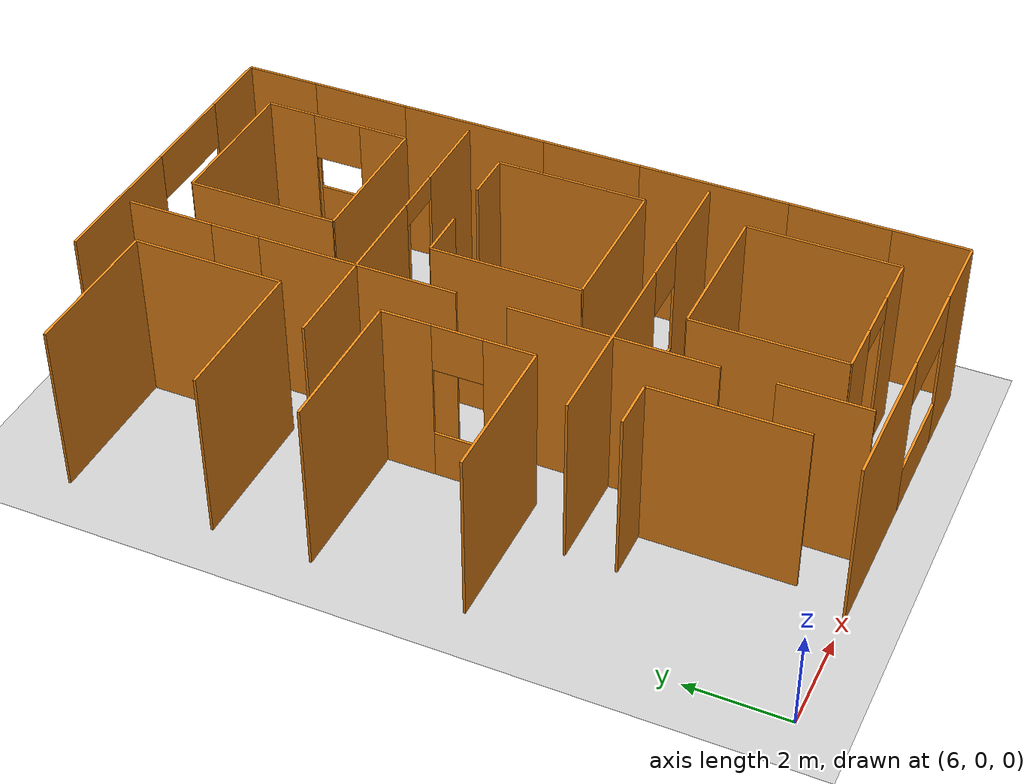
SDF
<sdf version="1.6">
 <world name="default">
  <include><uri>model://rirpc_box</uri><name>cube_4</name><pose>12.53125 2.46875 0 0 0 0</pose></include>
  <include><uri>model://rirpc_box</uri><name>cube_2</name><pose>10.03125 14.96875 0 0 0 0</pose></include>
  <model name="window_18">
   <pose>9.0 7.5 1.75 0 0 1.5707963267948966</pose>
   <link name="top">
    <pose>0 0 1.25 0 0 0</pose>
    <inertial>
     <mass>1</mass>
     <inertia><ixx>0</ixx><ixy>0</ixy><ixz>0</ixz><iyy>0</iyy><iyz>0</iyz><izz>0</izz></inertia>
    </inertial>
    <collision name="collision"><geometry><box><size>1.0 0.05 1.0</size></box></geometry></collision>
    <visual name="visual">
     <geometry><box><size>1.0 0.05 1.0</size></box></geometry>
     <material>
      <script><name>Gazebo/Orange</name><uri>file://media/materials/scripts/gazebo.material</uri></script>
     </material>
    </visual>
   </link>
   <link name="bot">
    <pose>0 0 -1.25 0 0 0</pose>
    <inertial>
     <mass>1</mass>
     <inertia><ixx>0</ixx><ixy>0</ixy><ixz>0</ixz><iyy>0</iyy><iyz>0</iyz><izz>0</izz></inertia>
    </inertial>
    <collision name="collision"><geometry><box><size>1.0 0.05 1.0</size></box></geometry></collision>
    <visual name="visual">
     <geometry><box><size>1.0 0.05 1.0</size></box></geometry>
     <material>
      <script><name>Gazebo/Orange</name><uri>file://media/materials/scripts/gazebo.material</uri></script>
     </material>
    </visual>
   </link>
   <static>1</static>
  </model>
  <model name="window_16">
   <pose>14.0 12.5 1.75 0 0 1.5707963267948966</pose>
   <link name="top">
    <pose>0 0 1.25 0 0 0</pose>
    <inertial>
     <mass>1</mass>
     <inertia><ixx>0</ixx><ixy>0</ixy><ixz>0</ixz><iyy>0</iyy><iyz>0</iyz><izz>0</izz></inertia>
    </inertial>
    <collision name="collision"><geometry><box><size>1.0 0.05 1.0</size></box></geometry></collision>
    <visual name="visual">
     <geometry><box><size>1.0 0.05 1.0</size></box></geometry>
     <material>
      <script><name>Gazebo/Orange</name><uri>file://media/materials/scripts/gazebo.material</uri></script>
     </material>
    </visual>
   </link>
   <link name="bot">
    <pose>0 0 -1.25 0 0 0</pose>
    <inertial>
     <mass>1</mass>
     <inertia><ixx>0</ixx><ixy>0</ixy><ixz>0</ixz><iyy>0</iyy><iyz>0</iyz><izz>0</izz></inertia>
    </inertial>
    <collision name="collision"><geometry><box><size>1.0 0.05 1.0</size></box></geometry></collision>
    <visual name="visual">
     <geometry><box><size>1.0 0.05 1.0</size></box></geometry>
     <material>
      <script><name>Gazebo/Orange</name><uri>file://media/materials/scripts/gazebo.material</uri></script>
     </material>
    </visual>
   </link>
   <static>1</static>
  </model>
  <model name="window_14">
   <pose>10.0 12.5 1.75 0 0 1.5707963267948966</pose>
   <link name="top">
    <pose>0 0 1.25 0 0 0</pose>
    <inertial>
     <mass>1</mass>
     <inertia><ixx>0</ixx><ixy>0</ixy><ixz>0</ixz><iyy>0</iyy><iyz>0</iyz><izz>0</izz></inertia>
    </inertial>
    <collision name="collision"><geometry><box><size>1.0 0.05 1.0</size></box></geometry></collision>
    <visual name="visual">
     <geometry><box><size>1.0 0.05 1.0</size></box></geometry>
     <material>
      <script><name>Gazebo/Orange</name><uri>file://media/materials/scripts/gazebo.material</uri></script>
     </material>
    </visual>
   </link>
   <link name="bot">
    <pose>0 0 -1.25 0 0 0</pose>
    <inertial>
     <mass>1</mass>
     <inertia><ixx>0</ixx><ixy>0</ixy><ixz>0</ixz><iyy>0</iyy><iyz>0</iyz><izz>0</izz></inertia>
    </inertial>
    <collision name="collision"><geometry><box><size>1.0 0.05 1.0</size></box></geometry></collision>
    <visual name="visual">
     <geometry><box><size>1.0 0.05 1.0</size></box></geometry>
     <material>
      <script><name>Gazebo/Orange</name><uri>file://media/materials/scripts/gazebo.material</uri></script>
     </material>
    </visual>
   </link>
   <static>1</static>
  </model>
  <model name="window_12">
   <pose>12.5 5.0 1.75 0 0 -3.141592653589793</pose>
   <link name="top">
    <pose>0 0 1.25 0 0 0</pose>
    <inertial>
     <mass>1</mass>
     <inertia><ixx>0</ixx><ixy>0</ixy><ixz>0</ixz><iyy>0</iyy><iyz>0</iyz><izz>0</izz></inertia>
    </inertial>
    <collision name="collision"><geometry><box><size>1.0 0.05 1.0</size></box></geometry></collision>
    <visual name="visual">
     <geometry><box><size>1.0 0.05 1.0</size></box></geometry>
     <material>
      <script><name>Gazebo/Orange</name><uri>file://media/materials/scripts/gazebo.material</uri></script>
     </material>
    </visual>
   </link>
   <link name="bot">
    <pose>0 0 -1.25 0 0 0</pose>
    <inertial>
     <mass>1</mass>
     <inertia><ixx>0</ixx><ixy>0</ixy><ixz>0</ixz><iyy>0</iyy><iyz>0</iyz><izz>0</izz></inertia>
    </inertial>
    <collision name="collision"><geometry><box><size>1.0 0.05 1.0</size></box></geometry></collision>
    <visual name="visual">
     <geometry><box><size>1.0 0.05 1.0</size></box></geometry>
     <material>
      <script><name>Gazebo/Orange</name><uri>file://media/materials/scripts/gazebo.material</uri></script>
     </material>
    </visual>
   </link>
   <static>1</static>
  </model>
  <model name="window_8">
   <pose>12.5 0.0 1.75 0 0 -0.0</pose>
   <link name="top">
    <pose>0 0 1.25 0 0 0</pose>
    <inertial>
     <mass>1</mass>
     <inertia><ixx>0</ixx><ixy>0</ixy><ixz>0</ixz><iyy>0</iyy><iyz>0</iyz><izz>0</izz></inertia>
    </inertial>
    <collision name="collision"><geometry><box><size>2.0 0.05 1.0</size></box></geometry></collision>
    <visual name="visual">
     <geometry><box><size>2.0 0.05 1.0</size></box></geometry>
     <material>
      <script><name>Gazebo/Orange</name><uri>file://media/materials/scripts/gazebo.material</uri></script>
     </material>
    </visual>
   </link>
   <link name="bot">
    <pose>0 0 -1.25 0 0 0</pose>
    <inertial>
     <mass>1</mass>
     <inertia><ixx>0</ixx><ixy>0</ixy><ixz>0</ixz><iyy>0</iyy><iyz>0</iyz><izz>0</izz></inertia>
    </inertial>
    <collision name="collision"><geometry><box><size>2.0 0.05 1.0</size></box></geometry></collision>
    <visual name="visual">
     <geometry><box><size>2.0 0.05 1.0</size></box></geometry>
     <material>
      <script><name>Gazebo/Orange</name><uri>file://media/materials/scripts/gazebo.material</uri></script>
     </material>
    </visual>
   </link>
   <static>1</static>
  </model>
  <model name="window_7">
   <pose>15.0 2.5 1.75 0 0 1.5707963267948966</pose>
   <link name="top">
    <pose>0 0 1.25 0 0 0</pose>
    <inertial>
     <mass>1</mass>
     <inertia><ixx>0</ixx><ixy>0</ixy><ixz>0</ixz><iyy>0</iyy><iyz>0</iyz><izz>0</izz></inertia>
    </inertial>
    <collision name="collision"><geometry><box><size>2.0 0.05 1.0</size></box></geometry></collision>
    <visual name="visual">
     <geometry><box><size>2.0 0.05 1.0</size></box></geometry>
     <material>
      <script><name>Gazebo/Orange</name><uri>file://media/materials/scripts/gazebo.material</uri></script>
     </material>
    </visual>
   </link>
   <link name="bot">
    <pose>0 0 -1.25 0 0 0</pose>
    <inertial>
     <mass>1</mass>
     <inertia><ixx>0</ixx><ixy>0</ixy><ixz>0</ixz><iyy>0</iyy><iyz>0</iyz><izz>0</izz></inertia>
    </inertial>
    <collision name="collision"><geometry><box><size>2.0 0.05 1.0</size></box></geometry></collision>
    <visual name="visual">
     <geometry><box><size>2.0 0.05 1.0</size></box></geometry>
     <material>
      <script><name>Gazebo/Orange</name><uri>file://media/materials/scripts/gazebo.material</uri></script>
     </material>
    </visual>
   </link>
   <static>1</static>
  </model>
  <model name="window_6">
   <pose>15.0 7.5 1.75 0 0 1.5707963267948966</pose>
   <link name="top">
    <pose>0 0 1.25 0 0 0</pose>
    <inertial>
     <mass>1</mass>
     <inertia><ixx>0</ixx><ixy>0</ixy><ixz>0</ixz><iyy>0</iyy><iyz>0</iyz><izz>0</izz></inertia>
    </inertial>
    <collision name="collision"><geometry><box><size>2.0 0.05 1.0</size></box></geometry></collision>
    <visual name="visual">
     <geometry><box><size>2.0 0.05 1.0</size></box></geometry>
     <material>
      <script><name>Gazebo/Orange</name><uri>file://media/materials/scripts/gazebo.material</uri></script>
     </material>
    </visual>
   </link>
   <link name="bot">
    <pose>0 0 -1.25 0 0 0</pose>
    <inertial>
     <mass>1</mass>
     <inertia><ixx>0</ixx><ixy>0</ixy><ixz>0</ixz><iyy>0</iyy><iyz>0</iyz><izz>0</izz></inertia>
    </inertial>
    <collision name="collision"><geometry><box><size>2.0 0.05 1.0</size></box></geometry></collision>
    <visual name="visual">
     <geometry><box><size>2.0 0.05 1.0</size></box></geometry>
     <material>
      <script><name>Gazebo/Orange</name><uri>file://media/materials/scripts/gazebo.material</uri></script>
     </material>
    </visual>
   </link>
   <static>1</static>
  </model>
  <model name="window_5">
   <pose>15.0 12.5 1.75 0 0 1.5707963267948966</pose>
   <link name="top">
    <pose>0 0 1.25 0 0 0</pose>
    <inertial>
     <mass>1</mass>
     <inertia><ixx>0</ixx><ixy>0</ixy><ixz>0</ixz><iyy>0</iyy><iyz>0</iyz><izz>0</izz></inertia>
    </inertial>
    <collision name="collision"><geometry><box><size>2.0 0.05 1.0</size></box></geometry></collision>
    <visual name="visual">
     <geometry><box><size>2.0 0.05 1.0</size></box></geometry>
     <material>
      <script><name>Gazebo/Orange</name><uri>file://media/materials/scripts/gazebo.material</uri></script>
     </material>
    </visual>
   </link>
   <link name="bot">
    <pose>0 0 -1.25 0 0 0</pose>
    <inertial>
     <mass>1</mass>
     <inertia><ixx>0</ixx><ixy>0</ixy><ixz>0</ixz><iyy>0</iyy><iyz>0</iyz><izz>0</izz></inertia>
    </inertial>
    <collision name="collision"><geometry><box><size>2.0 0.05 1.0</size></box></geometry></collision>
    <visual name="visual">
     <geometry><box><size>2.0 0.05 1.0</size></box></geometry>
     <material>
      <script><name>Gazebo/Orange</name><uri>file://media/materials/scripts/gazebo.material</uri></script>
     </material>
    </visual>
   </link>
   <static>1</static>
  </model>
  <model name="window_4">
   <pose>12.5 15.0 1.75 0 0 -3.141592653589793</pose>
   <link name="top">
    <pose>0 0 1.25 0 0 0</pose>
    <inertial>
     <mass>1</mass>
     <inertia><ixx>0</ixx><ixy>0</ixy><ixz>0</ixz><iyy>0</iyy><iyz>0</iyz><izz>0</izz></inertia>
    </inertial>
    <collision name="collision"><geometry><box><size>2.0 0.05 1.0</size></box></geometry></collision>
    <visual name="visual">
     <geometry><box><size>2.0 0.05 1.0</size></box></geometry>
     <material>
      <script><name>Gazebo/Orange</name><uri>file://media/materials/scripts/gazebo.material</uri></script>
     </material>
    </visual>
   </link>
   <link name="bot">
    <pose>0 0 -1.25 0 0 0</pose>
    <inertial>
     <mass>1</mass>
     <inertia><ixx>0</ixx><ixy>0</ixy><ixz>0</ixz><iyy>0</iyy><iyz>0</iyz><izz>0</izz></inertia>
    </inertial>
    <collision name="collision"><geometry><box><size>2.0 0.05 1.0</size></box></geometry></collision>
    <visual name="visual">
     <geometry><box><size>2.0 0.05 1.0</size></box></geometry>
     <material>
      <script><name>Gazebo/Orange</name><uri>file://media/materials/scripts/gazebo.material</uri></script>
     </material>
    </visual>
   </link>
   <static>1</static>
  </model>
  <model name="box_84">
   <pose>12.5 1.0 3.25 0 0 -3.141592653589793</pose>
   <link name="link">
    <inertial>
     <mass>1</mass>
     <inertia><ixx>0</ixx><ixy>0</ixy><ixz>0</ixz><iyy>0</iyy><iyz>0</iyz><izz>0</izz></inertia>
    </inertial>
    <collision name="collision"><geometry><box><size>1.0 0.05 0.5</size></box></geometry></collision>
    <visual name="visual">
     <geometry><box><size>1.0 0.05 0.5</size></box></geometry>
     <material>
      <script><name>Gazebo/Orange</name><uri>file://media/materials/scripts/gazebo.material</uri></script>
     </material>
    </visual>
   </link>
   <static>1</static>
  </model>
  <model name="box_81">
   <pose>12.5 10.0 3.25 0 0 -3.141592653589793</pose>
   <link name="link">
    <inertial>
     <mass>1</mass>
     <inertia><ixx>0</ixx><ixy>0</ixy><ixz>0</ixz><iyy>0</iyy><iyz>0</iyz><izz>0</izz></inertia>
    </inertial>
    <collision name="collision"><geometry><box><size>1.0 0.05 0.5</size></box></geometry></collision>
    <visual name="visual">
     <geometry><box><size>1.0 0.05 0.5</size></box></geometry>
     <material>
      <script><name>Gazebo/Orange</name><uri>file://media/materials/scripts/gazebo.material</uri></script>
     </material>
    </visual>
   </link>
   <static>1</static>
  </model>
  <model name="box_70">
   <pose>13.5 1.0 1.75 0 0 -0.0</pose>
   <link name="link">
    <inertial>
     <mass>1</mass>
     <inertia><ixx>0</ixx><ixy>0</ixy><ixz>0</ixz><iyy>0</iyy><iyz>0</iyz><izz>0</izz></inertia>
    </inertial>
    <collision name="collision"><geometry><box><size>1.0 0.05 3.5</size></box></geometry></collision>
    <visual name="visual">
     <geometry><box><size>1.0 0.05 3.5</size></box></geometry>
     <material>
      <script><name>Gazebo/Orange</name><uri>file://media/materials/scripts/gazebo.material</uri></script>
     </material>
    </visual>
   </link>
   <static>1</static>
  </model>
  <model name="box_69">
   <pose>14.0 2.5 1.75 0 0 1.5707963267948966</pose>
   <link name="link">
    <inertial>
     <mass>1</mass>
     <inertia><ixx>0</ixx><ixy>0</ixy><ixz>0</ixz><iyy>0</iyy><iyz>0</iyz><izz>0</izz></inertia>
    </inertial>
    <collision name="collision"><geometry><box><size>3.0 0.05 3.5</size></box></geometry></collision>
    <visual name="visual">
     <geometry><box><size>3.0 0.05 3.5</size></box></geometry>
     <material>
      <script><name>Gazebo/Orange</name><uri>file://media/materials/scripts/gazebo.material</uri></script>
     </material>
    </visual>
   </link>
   <static>1</static>
  </model>
  <model name="box_68">
   <pose>12.5 4.0 1.75 0 0 -3.141592653589793</pose>
   <link name="link">
    <inertial>
     <mass>1</mass>
     <inertia><ixx>0</ixx><ixy>0</ixy><ixz>0</ixz><iyy>0</iyy><iyz>0</iyz><izz>0</izz></inertia>
    </inertial>
    <collision name="collision"><geometry><box><size>3.0 0.05 3.5</size></box></geometry></collision>
    <visual name="visual">
     <geometry><box><size>3.0 0.05 3.5</size></box></geometry>
     <material>
      <script><name>Gazebo/Orange</name><uri>file://media/materials/scripts/gazebo.material</uri></script>
     </material>
    </visual>
   </link>
   <static>1</static>
  </model>
  <model name="box_67">
   <pose>11.0 2.5 1.75 0 0 -1.5707963267948966</pose>
   <link name="link">
    <inertial>
     <mass>1</mass>
     <inertia><ixx>0</ixx><ixy>0</ixy><ixz>0</ixz><iyy>0</iyy><iyz>0</iyz><izz>0</izz></inertia>
    </inertial>
    <collision name="collision"><geometry><box><size>3.0 0.05 3.5</size></box></geometry></collision>
    <visual name="visual">
     <geometry><box><size>3.0 0.05 3.5</size></box></geometry>
     <material>
      <script><name>Gazebo/Orange</name><uri>file://media/materials/scripts/gazebo.material</uri></script>
     </material>
    </visual>
   </link>
   <static>1</static>
  </model>
  <model name="box_66">
   <pose>11.5 1.0 1.75 0 0 -0.0</pose>
   <link name="link">
    <inertial>
     <mass>1</mass>
     <inertia><ixx>0</ixx><ixy>0</ixy><ixz>0</ixz><iyy>0</iyy><iyz>0</iyz><izz>0</izz></inertia>
    </inertial>
    <collision name="collision"><geometry><box><size>1.0 0.05 3.5</size></box></geometry></collision>
    <visual name="visual">
     <geometry><box><size>1.0 0.05 3.5</size></box></geometry>
     <material>
      <script><name>Gazebo/Orange</name><uri>file://media/materials/scripts/gazebo.material</uri></script>
     </material>
    </visual>
   </link>
   <static>1</static>
  </model>
  <model name="box_65">
   <pose>8.5 4.0 1.75 0 0 -0.0</pose>
   <link name="link">
    <inertial>
     <mass>1</mass>
     <inertia><ixx>0</ixx><ixy>0</ixy><ixz>0</ixz><iyy>0</iyy><iyz>0</iyz><izz>0</izz></inertia>
    </inertial>
    <collision name="collision"><geometry><box><size>1.0 0.05 3.5</size></box></geometry></collision>
    <visual name="visual">
     <geometry><box><size>1.0 0.05 3.5</size></box></geometry>
     <material>
      <script><name>Gazebo/Orange</name><uri>file://media/materials/scripts/gazebo.material</uri></script>
     </material>
    </visual>
   </link>
   <static>1</static>
  </model>
  <model name="box_64">
   <pose>9.0 2.5 1.75 0 0 -1.5707963267948966</pose>
   <link name="link">
    <inertial>
     <mass>1</mass>
     <inertia><ixx>0</ixx><ixy>0</ixy><ixz>0</ixz><iyy>0</iyy><iyz>0</iyz><izz>0</izz></inertia>
    </inertial>
    <collision name="collision"><geometry><box><size>3.0 0.05 3.5</size></box></geometry></collision>
    <visual name="visual">
     <geometry><box><size>3.0 0.05 3.5</size></box></geometry>
     <material>
      <script><name>Gazebo/Orange</name><uri>file://media/materials/scripts/gazebo.material</uri></script>
     </material>
    </visual>
   </link>
   <static>1</static>
  </model>
  <model name="box_60">
   <pose>14.0 13.5 1.75 0 0 1.5707963267948966</pose>
   <link name="link">
    <inertial>
     <mass>1</mass>
     <inertia><ixx>0</ixx><ixy>0</ixy><ixz>0</ixz><iyy>0</iyy><iyz>0</iyz><izz>0</izz></inertia>
    </inertial>
    <collision name="collision"><geometry><box><size>1.0 0.05 3.5</size></box></geometry></collision>
    <visual name="visual">
     <geometry><box><size>1.0 0.05 3.5</size></box></geometry>
     <material>
      <script><name>Gazebo/Orange</name><uri>file://media/materials/scripts/gazebo.material</uri></script>
     </material>
    </visual>
   </link>
   <static>1</static>
  </model>
  <model name="box_59">
   <pose>12.5 14.0 1.75 0 0 -3.141592653589793</pose>
   <link name="link">
    <inertial>
     <mass>1</mass>
     <inertia><ixx>0</ixx><ixy>0</ixy><ixz>0</ixz><iyy>0</iyy><iyz>0</iyz><izz>0</izz></inertia>
    </inertial>
    <collision name="collision"><geometry><box><size>3.0 0.05 3.5</size></box></geometry></collision>
    <visual name="visual">
     <geometry><box><size>3.0 0.05 3.5</size></box></geometry>
     <material>
      <script><name>Gazebo/Orange</name><uri>file://media/materials/scripts/gazebo.material</uri></script>
     </material>
    </visual>
   </link>
   <static>1</static>
  </model>
  <model name="box_58">
   <pose>11.0 12.5 1.75 0 0 -1.5707963267948966</pose>
   <link name="link">
    <inertial>
     <mass>1</mass>
     <inertia><ixx>0</ixx><ixy>0</ixy><ixz>0</ixz><iyy>0</iyy><iyz>0</iyz><izz>0</izz></inertia>
    </inertial>
    <collision name="collision"><geometry><box><size>3.0 0.05 3.5</size></box></geometry></collision>
    <visual name="visual">
     <geometry><box><size>3.0 0.05 3.5</size></box></geometry>
     <material>
      <script><name>Gazebo/Orange</name><uri>file://media/materials/scripts/gazebo.material</uri></script>
     </material>
    </visual>
   </link>
   <static>1</static>
  </model>
  <model name="box_57">
   <pose>12.5 11.0 1.75 0 0 -0.0</pose>
   <link name="link">
    <inertial>
     <mass>1</mass>
     <inertia><ixx>0</ixx><ixy>0</ixy><ixz>0</ixz><iyy>0</iyy><iyz>0</iyz><izz>0</izz></inertia>
    </inertial>
    <collision name="collision"><geometry><box><size>3.0 0.05 3.5</size></box></geometry></collision>
    <visual name="visual">
     <geometry><box><size>3.0 0.05 3.5</size></box></geometry>
     <material>
      <script><name>Gazebo/Orange</name><uri>file://media/materials/scripts/gazebo.material</uri></script>
     </material>
    </visual>
   </link>
   <static>1</static>
  </model>
  <model name="box_56">
   <pose>14.0 11.5 1.75 0 0 1.5707963267948966</pose>
   <link name="link">
    <inertial>
     <mass>1</mass>
     <inertia><ixx>0</ixx><ixy>0</ixy><ixz>0</ixz><iyy>0</iyy><iyz>0</iyz><izz>0</izz></inertia>
    </inertial>
    <collision name="collision"><geometry><box><size>1.0 0.05 3.5</size></box></geometry></collision>
    <visual name="visual">
     <geometry><box><size>1.0 0.05 3.5</size></box></geometry>
     <material>
      <script><name>Gazebo/Orange</name><uri>file://media/materials/scripts/gazebo.material</uri></script>
     </material>
    </visual>
   </link>
   <static>1</static>
  </model>
  <model name="box_54">
   <pose>7.5 11.0 1.75 0 0 -0.0</pose>
   <link name="link">
    <inertial>
     <mass>1</mass>
     <inertia><ixx>0</ixx><ixy>0</ixy><ixz>0</ixz><iyy>0</iyy><iyz>0</iyz><izz>0</izz></inertia>
    </inertial>
    <collision name="collision"><geometry><box><size>3.0 0.05 3.5</size></box></geometry></collision>
    <visual name="visual">
     <geometry><box><size>3.0 0.05 3.5</size></box></geometry>
     <material>
      <script><name>Gazebo/Orange</name><uri>file://media/materials/scripts/gazebo.material</uri></script>
     </material>
    </visual>
   </link>
   <static>1</static>
  </model>
  <model name="box_53">
   <pose>9.0 12.5 1.75 0 0 1.5707963267948966</pose>
   <link name="link">
    <inertial>
     <mass>1</mass>
     <inertia><ixx>0</ixx><ixy>0</ixy><ixz>0</ixz><iyy>0</iyy><iyz>0</iyz><izz>0</izz></inertia>
    </inertial>
    <collision name="collision"><geometry><box><size>3.0 0.05 3.5</size></box></geometry></collision>
    <visual name="visual">
     <geometry><box><size>3.0 0.05 3.5</size></box></geometry>
     <material>
      <script><name>Gazebo/Orange</name><uri>file://media/materials/scripts/gazebo.material</uri></script>
     </material>
    </visual>
   </link>
   <static>1</static>
  </model>
  <model name="box_52">
   <pose>7.5 14.0 1.75 0 0 -3.141592653589793</pose>
   <link name="link">
    <inertial>
     <mass>1</mass>
     <inertia><ixx>0</ixx><ixy>0</ixy><ixz>0</ixz><iyy>0</iyy><iyz>0</iyz><izz>0</izz></inertia>
    </inertial>
    <collision name="collision"><geometry><box><size>3.0 0.05 3.5</size></box></geometry></collision>
    <visual name="visual">
     <geometry><box><size>3.0 0.05 3.5</size></box></geometry>
     <material>
      <script><name>Gazebo/Orange</name><uri>file://media/materials/scripts/gazebo.material</uri></script>
     </material>
    </visual>
   </link>
   <static>1</static>
  </model>
  <model name="box_50">
   <pose>11.5 9.0 1.75 0 0 -0.0</pose>
   <link name="link">
    <inertial>
     <mass>1</mass>
     <inertia><ixx>0</ixx><ixy>0</ixy><ixz>0</ixz><iyy>0</iyy><iyz>0</iyz><izz>0</izz></inertia>
    </inertial>
    <collision name="collision"><geometry><box><size>1.0 0.05 3.5</size></box></geometry></collision>
    <visual name="visual">
     <geometry><box><size>1.0 0.05 3.5</size></box></geometry>
     <material>
      <script><name>Gazebo/Orange</name><uri>file://media/materials/scripts/gazebo.material</uri></script>
     </material>
    </visual>
   </link>
   <static>1</static>
  </model>
  <model name="box_49">
   <pose>13.5 9.0 1.75 0 0 -0.0</pose>
   <link name="link">
    <inertial>
     <mass>1</mass>
     <inertia><ixx>0</ixx><ixy>0</ixy><ixz>0</ixz><iyy>0</iyy><iyz>0</iyz><izz>0</izz></inertia>
    </inertial>
    <collision name="collision"><geometry><box><size>1.0 0.05 3.5</size></box></geometry></collision>
    <visual name="visual">
     <geometry><box><size>1.0 0.05 3.5</size></box></geometry>
     <material>
      <script><name>Gazebo/Orange</name><uri>file://media/materials/scripts/gazebo.material</uri></script>
     </material>
    </visual>
   </link>
   <static>1</static>
  </model>
  <model name="box_48">
   <pose>14.0 7.5 1.75 0 0 -1.5707963267948966</pose>
   <link name="link">
    <inertial>
     <mass>1</mass>
     <inertia><ixx>0</ixx><ixy>0</ixy><ixz>0</ixz><iyy>0</iyy><iyz>0</iyz><izz>0</izz></inertia>
    </inertial>
    <collision name="collision"><geometry><box><size>3.0 0.05 3.5</size></box></geometry></collision>
    <visual name="visual">
     <geometry><box><size>3.0 0.05 3.5</size></box></geometry>
     <material>
      <script><name>Gazebo/Orange</name><uri>file://media/materials/scripts/gazebo.material</uri></script>
     </material>
    </visual>
   </link>
   <static>1</static>
  </model>
  <model name="box_47">
   <pose>12.5 6.0 1.75 0 0 -3.141592653589793</pose>
   <link name="link">
    <inertial>
     <mass>1</mass>
     <inertia><ixx>0</ixx><ixy>0</ixy><ixz>0</ixz><iyy>0</iyy><iyz>0</iyz><izz>0</izz></inertia>
    </inertial>
    <collision name="collision"><geometry><box><size>3.0 0.05 3.5</size></box></geometry></collision>
    <visual name="visual">
     <geometry><box><size>3.0 0.05 3.5</size></box></geometry>
     <material>
      <script><name>Gazebo/Orange</name><uri>file://media/materials/scripts/gazebo.material</uri></script>
     </material>
    </visual>
   </link>
   <static>1</static>
  </model>
  <model name="box_46">
   <pose>11.0 7.5 1.75 0 0 1.5707963267948966</pose>
   <link name="link">
    <inertial>
     <mass>1</mass>
     <inertia><ixx>0</ixx><ixy>0</ixy><ixz>0</ixz><iyy>0</iyy><iyz>0</iyz><izz>0</izz></inertia>
    </inertial>
    <collision name="collision"><geometry><box><size>3.0 0.05 3.5</size></box></geometry></collision>
    <visual name="visual">
     <geometry><box><size>3.0 0.05 3.5</size></box></geometry>
     <material>
      <script><name>Gazebo/Orange</name><uri>file://media/materials/scripts/gazebo.material</uri></script>
     </material>
    </visual>
   </link>
   <static>1</static>
  </model>
  <model name="box_45">
   <pose>7.5 9.0 1.75 0 0 -0.0</pose>
   <link name="link">
    <inertial>
     <mass>1</mass>
     <inertia><ixx>0</ixx><ixy>0</ixy><ixz>0</ixz><iyy>0</iyy><iyz>0</iyz><izz>0</izz></inertia>
    </inertial>
    <collision name="collision"><geometry><box><size>3.0 0.05 3.5</size></box></geometry></collision>
    <visual name="visual">
     <geometry><box><size>3.0 0.05 3.5</size></box></geometry>
     <material>
      <script><name>Gazebo/Orange</name><uri>file://media/materials/scripts/gazebo.material</uri></script>
     </material>
    </visual>
   </link>
   <static>1</static>
  </model>
  <model name="box_44">
   <pose>9.0 8.5 1.75 0 0 -1.5707963267948966</pose>
   <link name="link">
    <inertial>
     <mass>1</mass>
     <inertia><ixx>0</ixx><ixy>0</ixy><ixz>0</ixz><iyy>0</iyy><iyz>0</iyz><izz>0</izz></inertia>
    </inertial>
    <collision name="collision"><geometry><box><size>1.0 0.05 3.5</size></box></geometry></collision>
    <visual name="visual">
     <geometry><box><size>1.0 0.05 3.5</size></box></geometry>
     <material>
      <script><name>Gazebo/Orange</name><uri>file://media/materials/scripts/gazebo.material</uri></script>
     </material>
    </visual>
   </link>
   <static>1</static>
  </model>
  <model name="box_43">
   <pose>9.0 6.5 1.75 0 0 -1.5707963267948966</pose>
   <link name="link">
    <inertial>
     <mass>1</mass>
     <inertia><ixx>0</ixx><ixy>0</ixy><ixz>0</ixz><iyy>0</iyy><iyz>0</iyz><izz>0</izz></inertia>
    </inertial>
    <collision name="collision"><geometry><box><size>1.0 0.05 3.5</size></box></geometry></collision>
    <visual name="visual">
     <geometry><box><size>1.0 0.05 3.5</size></box></geometry>
     <material>
      <script><name>Gazebo/Orange</name><uri>file://media/materials/scripts/gazebo.material</uri></script>
     </material>
    </visual>
   </link>
   <static>1</static>
  </model>
  <model name="box_42">
   <pose>7.5 6.0 1.75 0 0 -3.141592653589793</pose>
   <link name="link">
    <inertial>
     <mass>1</mass>
     <inertia><ixx>0</ixx><ixy>0</ixy><ixz>0</ixz><iyy>0</iyy><iyz>0</iyz><izz>0</izz></inertia>
    </inertial>
    <collision name="collision"><geometry><box><size>3.0 0.05 3.5</size></box></geometry></collision>
    <visual name="visual">
     <geometry><box><size>3.0 0.05 3.5</size></box></geometry>
     <material>
      <script><name>Gazebo/Orange</name><uri>file://media/materials/scripts/gazebo.material</uri></script>
     </material>
    </visual>
   </link>
   <static>1</static>
  </model>
  <model name="box_32">
   <pose>13.875 10.0 1.75 0 0 -3.141592653589793</pose>
   <link name="link">
    <inertial>
     <mass>1</mass>
     <inertia><ixx>0</ixx><ixy>0</ixy><ixz>0</ixz><iyy>0</iyy><iyz>0</iyz><izz>0</izz></inertia>
    </inertial>
    <collision name="collision"><geometry><box><size>1.75 0.05 3.5</size></box></geometry></collision>
    <visual name="visual">
     <geometry><box><size>1.75 0.05 3.5</size></box></geometry>
     <material>
      <script><name>Gazebo/Orange</name><uri>file://media/materials/scripts/gazebo.material</uri></script>
     </material>
    </visual>
   </link>
   <static>1</static>
  </model>
  <model name="box_30">
   <pose>10.0 10.0 1.75 0 0 -3.141592653589793</pose>
   <link name="link">
    <inertial>
     <mass>1</mass>
     <inertia><ixx>0</ixx><ixy>0</ixy><ixz>0</ixz><iyy>0</iyy><iyz>0</iyz><izz>0</izz></inertia>
    </inertial>
    <collision name="collision"><geometry><box><size>4.0 0.05 3.5</size></box></geometry></collision>
    <visual name="visual">
     <geometry><box><size>4.0 0.05 3.5</size></box></geometry>
     <material>
      <script><name>Gazebo/Orange</name><uri>file://media/materials/scripts/gazebo.material</uri></script>
     </material>
    </visual>
   </link>
   <static>1</static>
  </model>
  <model name="box_26">
   <pose>10.0 13.875 1.75 0 0 -1.5707963267948966</pose>
   <link name="link">
    <inertial>
     <mass>1</mass>
     <inertia><ixx>0</ixx><ixy>0</ixy><ixz>0</ixz><iyy>0</iyy><iyz>0</iyz><izz>0</izz></inertia>
    </inertial>
    <collision name="collision"><geometry><box><size>1.75 0.05 3.5</size></box></geometry></collision>
    <visual name="visual">
     <geometry><box><size>1.75 0.05 3.5</size></box></geometry>
     <material>
      <script><name>Gazebo/Orange</name><uri>file://media/materials/scripts/gazebo.material</uri></script>
     </material>
    </visual>
   </link>
   <static>1</static>
  </model>
  <model name="box_25">
   <pose>13.875 5.0 1.75 0 0 -3.141592653589793</pose>
   <link name="link">
    <inertial>
     <mass>1</mass>
     <inertia><ixx>0</ixx><ixy>0</ixy><ixz>0</ixz><iyy>0</iyy><iyz>0</iyz><izz>0</izz></inertia>
    </inertial>
    <collision name="collision"><geometry><box><size>1.75 0.05 3.5</size></box></geometry></collision>
    <visual name="visual">
     <geometry><box><size>1.75 0.05 3.5</size></box></geometry>
     <material>
      <script><name>Gazebo/Orange</name><uri>file://media/materials/scripts/gazebo.material</uri></script>
     </material>
    </visual>
   </link>
   <static>1</static>
  </model>
  <model name="box_24">
   <pose>10.0 1.125 1.75 0 0 1.5707963267948966</pose>
   <link name="link">
    <inertial>
     <mass>1</mass>
     <inertia><ixx>0</ixx><ixy>0</ixy><ixz>0</ixz><iyy>0</iyy><iyz>0</iyz><izz>0</izz></inertia>
    </inertial>
    <collision name="collision"><geometry><box><size>1.75 0.05 3.5</size></box></geometry></collision>
    <visual name="visual">
     <geometry><box><size>1.75 0.05 3.5</size></box></geometry>
     <material>
      <script><name>Gazebo/Orange</name><uri>file://media/materials/scripts/gazebo.material</uri></script>
     </material>
    </visual>
   </link>
   <static>1</static>
  </model>
  <model name="box_22">
   <pose>10.0 5.0 1.75 0 0 1.5707963267948966</pose>
   <link name="link">
    <inertial>
     <mass>1</mass>
     <inertia><ixx>0</ixx><ixy>0</ixy><ixz>0</ixz><iyy>0</iyy><iyz>0</iyz><izz>0</izz></inertia>
    </inertial>
    <collision name="collision"><geometry><box><size>4.0 0.05 3.5</size></box></geometry></collision>
    <visual name="visual">
     <geometry><box><size>4.0 0.05 3.5</size></box></geometry>
     <material>
      <script><name>Gazebo/Orange</name><uri>file://media/materials/scripts/gazebo.material</uri></script>
     </material>
    </visual>
   </link>
   <static>1</static>
  </model>
  <model name="box_21">
   <pose>10.0 10.0 1.75 0 0 1.5707963267948966</pose>
   <link name="link">
    <inertial>
     <mass>1</mass>
     <inertia><ixx>0</ixx><ixy>0</ixy><ixz>0</ixz><iyy>0</iyy><iyz>0</iyz><izz>0</izz></inertia>
    </inertial>
    <collision name="collision"><geometry><box><size>4.0 0.05 3.5</size></box></geometry></collision>
    <visual name="visual">
     <geometry><box><size>4.0 0.05 3.5</size></box></geometry>
     <material>
      <script><name>Gazebo/Orange</name><uri>file://media/materials/scripts/gazebo.material</uri></script>
     </material>
    </visual>
   </link>
   <static>1</static>
  </model>
  <model name="box_18">
   <pose>10.0 5.0 1.75 0 0 -3.141592653589793</pose>
   <link name="link">
    <inertial>
     <mass>1</mass>
     <inertia><ixx>0</ixx><ixy>0</ixy><ixz>0</ixz><iyy>0</iyy><iyz>0</iyz><izz>0</izz></inertia>
    </inertial>
    <collision name="collision"><geometry><box><size>4.0 0.05 3.5</size></box></geometry></collision>
    <visual name="visual">
     <geometry><box><size>4.0 0.05 3.5</size></box></geometry>
     <material>
      <script><name>Gazebo/Orange</name><uri>file://media/materials/scripts/gazebo.material</uri></script>
     </material>
    </visual>
   </link>
   <static>1</static>
  </model>
  <model name="box_13">
   <pose>10.0 0.0 1.75 0 0 -0.0</pose>
   <link name="link">
    <inertial>
     <mass>1</mass>
     <inertia><ixx>0</ixx><ixy>0</ixy><ixz>0</ixz><iyy>0</iyy><iyz>0</iyz><izz>0</izz></inertia>
    </inertial>
    <collision name="collision"><geometry><box><size>3.0 0.05 3.5</size></box></geometry></collision>
    <visual name="visual">
     <geometry><box><size>3.0 0.05 3.5</size></box></geometry>
     <material>
      <script><name>Gazebo/Orange</name><uri>file://media/materials/scripts/gazebo.material</uri></script>
     </material>
    </visual>
   </link>
   <static>1</static>
  </model>
  <model name="box_12">
   <pose>14.25 0.0 1.75 0 0 -0.0</pose>
   <link name="link">
    <inertial>
     <mass>1</mass>
     <inertia><ixx>0</ixx><ixy>0</ixy><ixz>0</ixz><iyy>0</iyy><iyz>0</iyz><izz>0</izz></inertia>
    </inertial>
    <collision name="collision"><geometry><box><size>1.5 0.05 3.5</size></box></geometry></collision>
    <visual name="visual">
     <geometry><box><size>1.5 0.05 3.5</size></box></geometry>
     <material>
      <script><name>Gazebo/Orange</name><uri>file://media/materials/scripts/gazebo.material</uri></script>
     </material>
    </visual>
   </link>
   <static>1</static>
  </model>
  <model name="box_11">
   <pose>15.0 0.75 1.75 0 0 1.5707963267948966</pose>
   <link name="link">
    <inertial>
     <mass>1</mass>
     <inertia><ixx>0</ixx><ixy>0</ixy><ixz>0</ixz><iyy>0</iyy><iyz>0</iyz><izz>0</izz></inertia>
    </inertial>
    <collision name="collision"><geometry><box><size>1.5 0.05 3.5</size></box></geometry></collision>
    <visual name="visual">
     <geometry><box><size>1.5 0.05 3.5</size></box></geometry>
     <material>
      <script><name>Gazebo/Orange</name><uri>file://media/materials/scripts/gazebo.material</uri></script>
     </material>
    </visual>
   </link>
   <static>1</static>
  </model>
  <model name="box_10">
   <pose>15.0 5.0 1.75 0 0 1.5707963267948966</pose>
   <link name="link">
    <inertial>
     <mass>1</mass>
     <inertia><ixx>0</ixx><ixy>0</ixy><ixz>0</ixz><iyy>0</iyy><iyz>0</iyz><izz>0</izz></inertia>
    </inertial>
    <collision name="collision"><geometry><box><size>3.0 0.05 3.5</size></box></geometry></collision>
    <visual name="visual">
     <geometry><box><size>3.0 0.05 3.5</size></box></geometry>
     <material>
      <script><name>Gazebo/Orange</name><uri>file://media/materials/scripts/gazebo.material</uri></script>
     </material>
    </visual>
   </link>
   <static>1</static>
  </model>
  <model name="box_9">
   <pose>15.0 10.0 1.75 0 0 1.5707963267948966</pose>
   <link name="link">
    <inertial>
     <mass>1</mass>
     <inertia><ixx>0</ixx><ixy>0</ixy><ixz>0</ixz><iyy>0</iyy><iyz>0</iyz><izz>0</izz></inertia>
    </inertial>
    <collision name="collision"><geometry><box><size>3.0 0.05 3.5</size></box></geometry></collision>
    <visual name="visual">
     <geometry><box><size>3.0 0.05 3.5</size></box></geometry>
     <material>
      <script><name>Gazebo/Orange</name><uri>file://media/materials/scripts/gazebo.material</uri></script>
     </material>
    </visual>
   </link>
   <static>1</static>
  </model>
  <model name="box_8">
   <pose>15.0 14.25 1.75 0 0 1.5707963267948966</pose>
   <link name="link">
    <inertial>
     <mass>1</mass>
     <inertia><ixx>0</ixx><ixy>0</ixy><ixz>0</ixz><iyy>0</iyy><iyz>0</iyz><izz>0</izz></inertia>
    </inertial>
    <collision name="collision"><geometry><box><size>1.5 0.05 3.5</size></box></geometry></collision>
    <visual name="visual">
     <geometry><box><size>1.5 0.05 3.5</size></box></geometry>
     <material>
      <script><name>Gazebo/Orange</name><uri>file://media/materials/scripts/gazebo.material</uri></script>
     </material>
    </visual>
   </link>
   <static>1</static>
  </model>
  <model name="box_7">
   <pose>14.25 15.0 1.75 0 0 -3.141592653589793</pose>
   <link name="link">
    <inertial>
     <mass>1</mass>
     <inertia><ixx>0</ixx><ixy>0</ixy><ixz>0</ixz><iyy>0</iyy><iyz>0</iyz><izz>0</izz></inertia>
    </inertial>
    <collision name="collision"><geometry><box><size>1.5 0.05 3.5</size></box></geometry></collision>
    <visual name="visual">
     <geometry><box><size>1.5 0.05 3.5</size></box></geometry>
     <material>
      <script><name>Gazebo/Orange</name><uri>file://media/materials/scripts/gazebo.material</uri></script>
     </material>
    </visual>
   </link>
   <static>1</static>
  </model>
  <model name="box_6">
   <pose>10.0 15.0 1.75 0 0 -3.141592653589793</pose>
   <link name="link">
    <inertial>
     <mass>1</mass>
     <inertia><ixx>0</ixx><ixy>0</ixy><ixz>0</ixz><iyy>0</iyy><iyz>0</iyz><izz>0</izz></inertia>
    </inertial>
    <collision name="collision"><geometry><box><size>3.0 0.05 3.5</size></box></geometry></collision>
    <visual name="visual">
     <geometry><box><size>3.0 0.05 3.5</size></box></geometry>
     <material>
      <script><name>Gazebo/Orange</name><uri>file://media/materials/scripts/gazebo.material</uri></script>
     </material>
    </visual>
   </link>
   <static>1</static>
  </model>
  <model name="ground_plane">
   <static>1</static>
   <link name="link">
    <collision name="collision">
     <geometry><plane><normal>0 0 1</normal><size>100 100</size></plane></geometry>
     <surface>
      <contact><collide_bitmask>65535</collide_bitmask></contact>
      <friction><ode><mu>100</mu><mu2>50</mu2></ode></friction>
     </surface>
    </collision>
    <visual name="visual">
     <cast_shadows>0</cast_shadows>
     <geometry><plane><normal>0 0 1</normal><size>100 100</size></plane></geometry>
     <material>
      <script><uri>file://media/materials/scripts/gazebo.material</uri><name>Gazebo/Grey</name></script>
     </material>
    </visual>
   </link>
  </model>
 </world>
</sdf>
